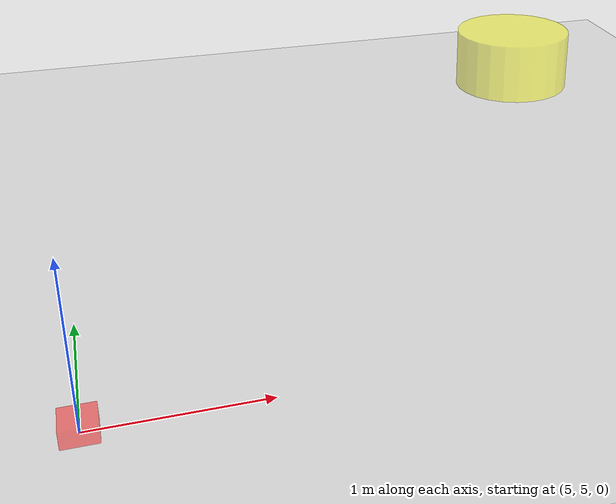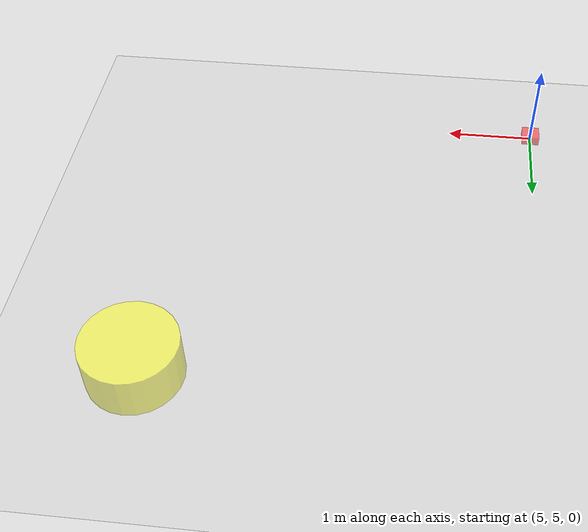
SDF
<?xml version="1.0" ?>
<sdf version="1.7">
  <world name="default">
    <!-- Include the ground plane -->
    <include>
      <uri>model://ground_plane</uri>
    </include>

    <!-- Include a light source -->
    <include>
      <uri>model://sun</uri>
    </include>

    <!-- Define the cube -->
    <model name="box">
      <static>true</static>
      <pose>5 5 0 0 0 0</pose>

      <!-- Link with no collision -->
      <link name="visual_only_link">
        <!-- Visual element -->
        <visual name="cube_visual">
          <geometry>
            <box>
              <size>0.2 0.2 0.2</size>
            </box>
          </geometry>
          <material>
            <ambient>1 0 0 0.5</ambient> <!-- Red color with transparency -->
            <diffuse>1 0 0 0.5</diffuse> <!-- Red color with transparency -->
            <specular>0.5 0.5 0.5 1</specular>
          </material>
        </visual>
        <!-- No collision element -->
      </link>
    </model>

    <!-- Define the cylinder -->
    <model name="final_target">
      <static>true</static>
      <pose>9 9 0 0 0 0</pose>

      <!-- Link with no collision -->
      <link name="visual_only_cylinder">
        <!-- Visual element -->
        <visual name="cylinder_visual">
          <geometry>
            <cylinder>
              <radius>0.5</radius>
              <length>1.0</length>
            </cylinder>
          </geometry>
          <material>
            <ambient>1 1 0 0.5</ambient> <!-- Yellow color with transparency -->
            <diffuse>1 1 0 0.5</diffuse> <!-- Yellow color with transparency -->
            <specular>0.5 0.5 0.5 1</specular>
          </material>
        </visual>
        <!-- No collision element -->
      </link>
    </model>
    <gui fullscreen='0'>
      <camera name='user_camera'>
        <pose>9.58609 -10.6852 13.5369 0 0.699643 1.8522</pose>
        <view_controller>orbit</view_controller>
        <projection_type>perspective</projection_type>
      </camera>
    </gui>
  </world>
</sdf>
